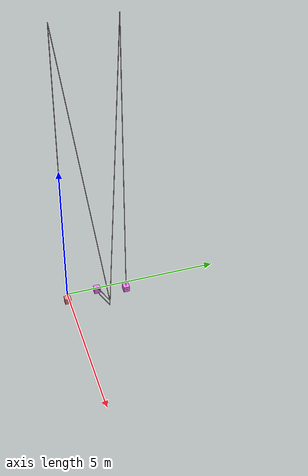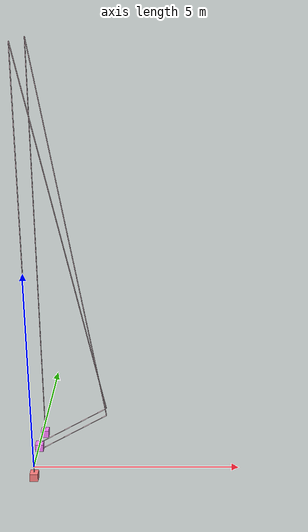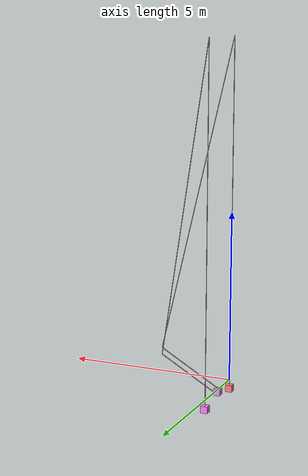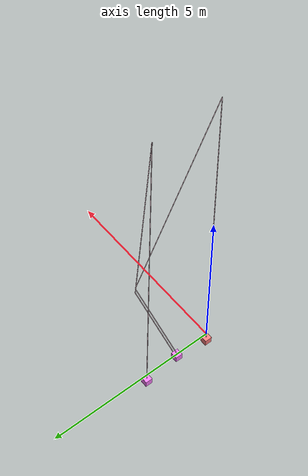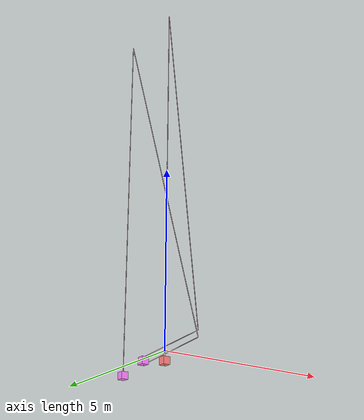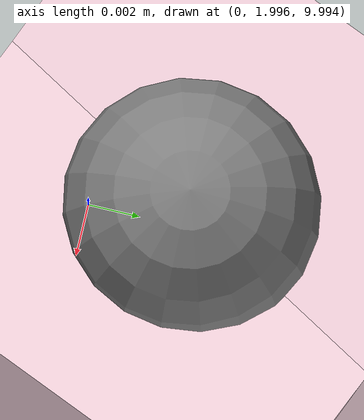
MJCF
<mujoco>
            <compiler angle="radian" autolimits="true" />
            <compiler meshdir="asset" texturedir="asset" assetdir="asset" />
            <option gravity="0 0 -9.81" />
            <default class="main">
            <geom friction="0 0 0" solimp="0.9 1 0.001 0.01 20" solref="0.02 1" condim="1" />
        </default>

        <visual>
            <headlight diffuse="0.7 0.7 0.7" ambient="0.5 0.5 0.5" />
            <global offwidth="1920" offheight="1080" />
        </visual>

        <asset>
            <texture type="skybox" builtin="gradient" rgb1="0 0.5 0.7" rgb2="0 0 0" width="512" height="512" />
            <texture type="2d" name="checks1" builtin="checker" rgb1="1 1 1" rgb2="0 0 0" width="256" height="256" />
            <material name="test_color" texture="checks1" texuniform="true" texrepeat="2 2" />
            <material name="reflectance" reflectance=".4" />
            <texture name="grid" type="2d" builtin="checker" width="512" height="512" rgb1="1.0 0.6235 0.1098" rgb2="1.0 0.749 0.4118" />
            <texture name="white-texture-background" type="2d" file="/home/aryansatpathy/DevStuff/cmu/PHO/sim/geom_sources/fixed_sources/rocket/rocket.white-texture-background.png" content_type="image/png" />
            <material name="pulley" texture="grid" texrepeat="2 2" texuniform="true" />

        </asset>
        <worldbody><body name="fixed_pulley_start.fixed_pulley" pos="0.0 0.0 10.0" quat="1.0 0.0 0.0 0.0"><site name="fixed_pulley_start.fixed_pulley.site" pos="0 0 0.0" quat="1.0 -0.0 -0.0 -0.0" />
</body>
<body name="fixed_pulley_start.mass" pos="0.0 0.0 -0.25" quat="1.0 0.0 0.0 0.0">
<geom name="fixed_pulley_start.mass.geom" type="box" pos="0 0 0" size="0.1 0.1 0.1" rgba="1.0 0.5 0.5 1.0" mass="1" quat="0 0 0 1" condim="1" contype="1" conaffinity="1" />
<site name="fixed_pulley_start.mass.top-1" pos="0.0 0 0.1" quat="1.0 -0.0 -0.0 -0.0" />
<site name="fixed_pulley_start.mass.sensor" pos="0 0 0" quat="1.0 -0.0 -0.0 -0.0" />
<site name="fixed_pulley_start.mass.center" pos="0 0 0" quat="1.0 -0.0 -0.0 -0.0" />
<site name="fixed_pulley_start.mass.left" pos="-0.1 0 0" quat="1.0 -0.0 -0.0 -0.0" />
<site name="fixed_pulley_start.mass.right" pos="0.1 0 0" quat="1.0 -0.0 -0.0 -0.0" />
<site name="fixed_pulley_start.mass.bottom" pos="0 0 -0.1" quat="1.0 -0.0 -0.0 -0.0" />
<joint name="fixed_pulley_start.mass.joint" type="slide" axis="0 0 1" pos="0 0 0" />
</body>
<body name="directed_mass.mass" pos="0.0 1.0 -0.05" quat="1.0 0.0 0.0 0.0">
<geom name="directed_mass.mass.geom" type="box" pos="0 0 0" size="0.1 0.1 0.1" rgba="1.0 0.5 1.0 1.0" mass="2" quat="0 0 0 1" condim="1" contype="1" conaffinity="1" />
<site name="directed_mass.mass.top-1" pos="0.0 0 0.1" quat="1.0 -0.0 -0.0 -0.0" />
<site name="directed_mass.mass.sensor" pos="0 0 0" quat="1.0 -0.0 -0.0 -0.0" />
<site name="directed_mass.mass.center" pos="0 0 0" quat="1.0 -0.0 -0.0 -0.0" />
<site name="directed_mass.mass.left" pos="-0.1 0 0" quat="1.0 -0.0 -0.0 -0.0" />
<site name="directed_mass.mass.right" pos="0.1 0 0" quat="1.0 -0.0 -0.0 -0.0" />
<site name="directed_mass.mass.bottom" pos="0 0 -0.1" quat="1.0 -0.0 -0.0 -0.0" />
<joint name="directed_mass.mass.joint" type="slide" axis="1 0 0" pos="0 0 0" />
</body>
<body name="directed_mass.fixed_pulley-0" pos="1.7320508075688774 1.0 1.0499999999999998" quat="1.0 0.0 0.0 0.0"><site name="directed_mass.fixed_pulley-0.site" pos="0 0 0.0" quat="1.0 -0.0 -0.0 -0.0" />
</body>
<body name="directed_mass.fixed_pulley-1" pos="1.7320508075688774 1.0 0.8499999999999999" quat="1.0 0.0 0.0 0.0"><site name="directed_mass.fixed_pulley-1.site" pos="0 0 0.0" quat="1.0 -0.0 -0.0 -0.0" />
</body>
<body name="fixed_pulley_end.fixed_pulley" pos="0.0 2.0 10.0" quat="1.0 0.0 0.0 0.0"><site name="fixed_pulley_end.fixed_pulley.site" pos="0 0 0.0" quat="1.0 -0.0 -0.0 -0.0" />
</body>
<body name="fixed_pulley_end.mass" pos="0.0 2.0 -0.25" quat="1.0 0.0 0.0 0.0">
<geom name="fixed_pulley_end.mass.geom" type="box" pos="0 0 0" size="0.1 0.1 0.1" rgba="1.0 0.5 1.0 1.0" mass="1" quat="0 0 0 1" condim="1" contype="1" conaffinity="1" />
<site name="fixed_pulley_end.mass.top-1" pos="0.0 0 0.1" quat="1.0 -0.0 -0.0 -0.0" />
<site name="fixed_pulley_end.mass.sensor" pos="0 0 0" quat="1.0 -0.0 -0.0 -0.0" />
<site name="fixed_pulley_end.mass.center" pos="0 0 0" quat="1.0 -0.0 -0.0 -0.0" />
<site name="fixed_pulley_end.mass.left" pos="-0.1 0 0" quat="1.0 -0.0 -0.0 -0.0" />
<site name="fixed_pulley_end.mass.right" pos="0.1 0 0" quat="1.0 -0.0 -0.0 -0.0" />
<site name="fixed_pulley_end.mass.bottom" pos="0 0 -0.1" quat="1.0 -0.0 -0.0 -0.0" />
<joint name="fixed_pulley_end.mass.joint" type="slide" axis="0 0 1" pos="0 0 0" />
</body>
</worldbody><tendon>
<spatial name="spatial_0" width="0.01" rgba="0.9686 0.8392 0.8784 1" range="0 21.320741518546903" limited="true" solimplimit="0.99 1 0.001 0.01 20" solreflimit="0.02 1">
<site site="fixed_pulley_start.mass.top-1" />
<site site="fixed_pulley_start.fixed_pulley.site" />
<site site="directed_mass.fixed_pulley-0.site" />
<site site="directed_mass.mass.top-1" />
</spatial>
</tendon>
<tendon>
<spatial name="spatial_1" width="0.01" rgba="0.9686 0.8392 0.8784 1" range="0 21.516029041167876" limited="true" solimplimit="0.99 1 0.001 0.01 20" solreflimit="0.02 1">
<site site="directed_mass.mass.bottom" />
<site site="directed_mass.fixed_pulley-1.site" />
<site site="fixed_pulley_end.fixed_pulley.site" />
<site site="fixed_pulley_end.mass.top-1" />
</spatial>
</tendon>

        <sensor>

        </sensor>
        <custom>

        </custom>
        <contact>

        </contact>
        <actuator>

        </actuator>
    </mujoco>
